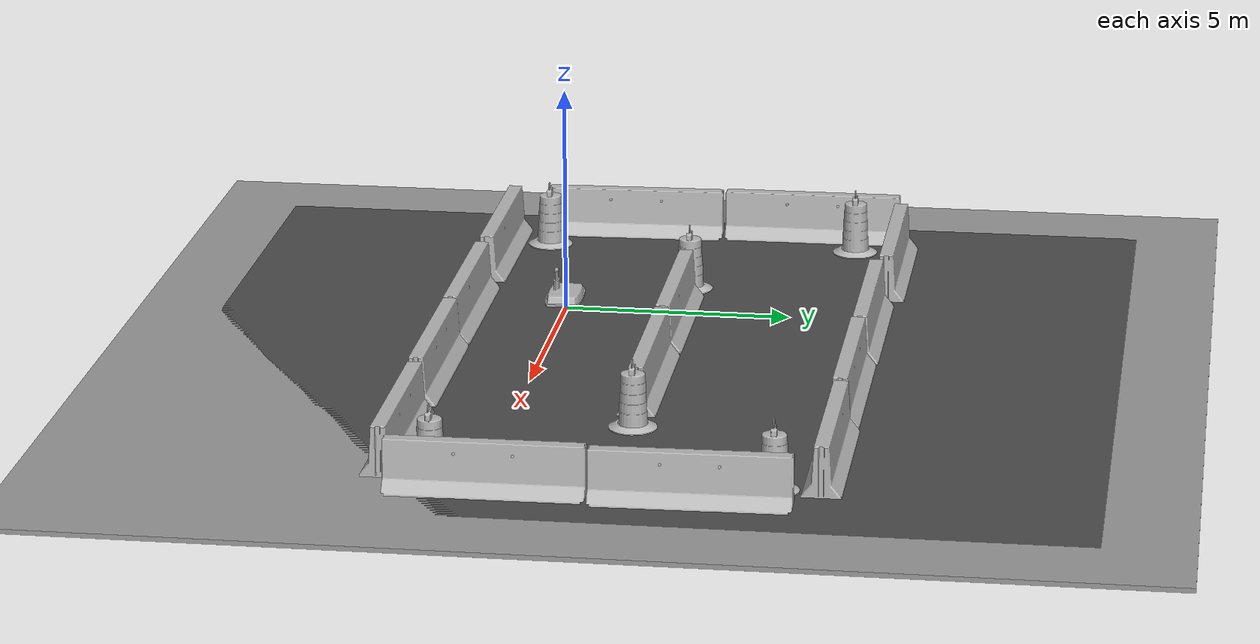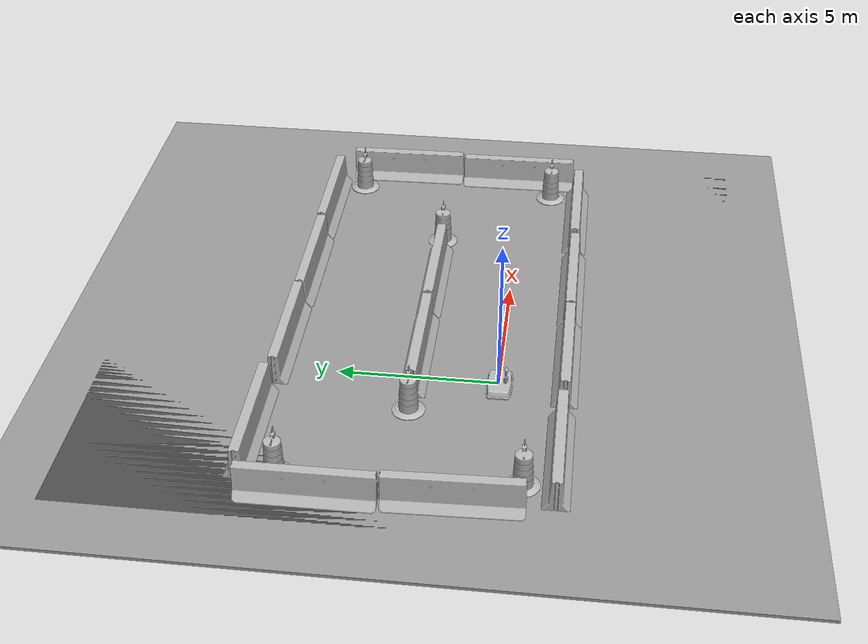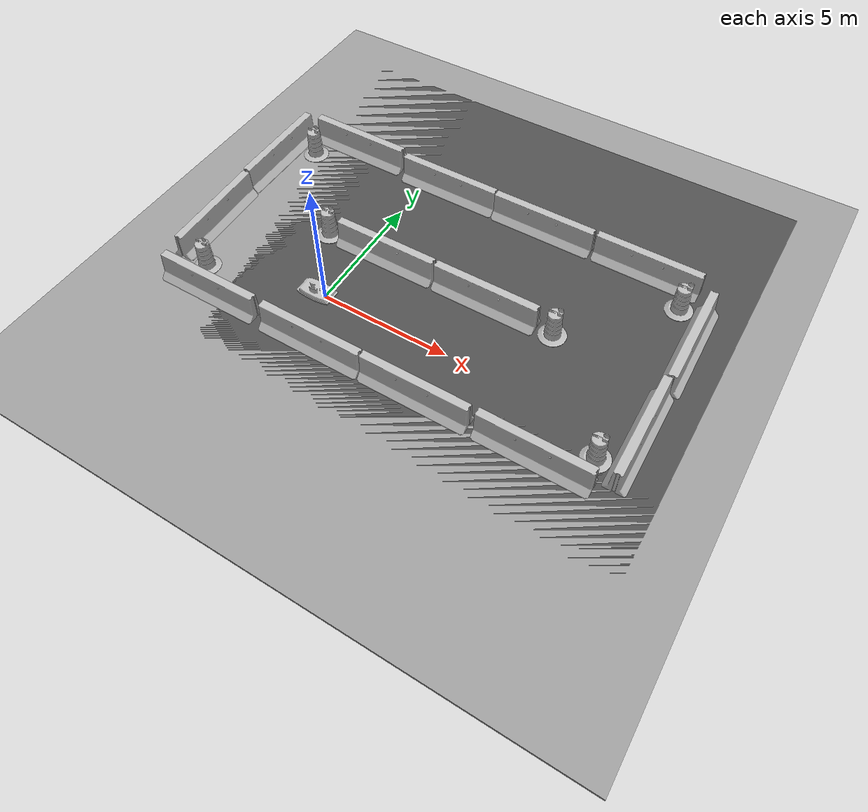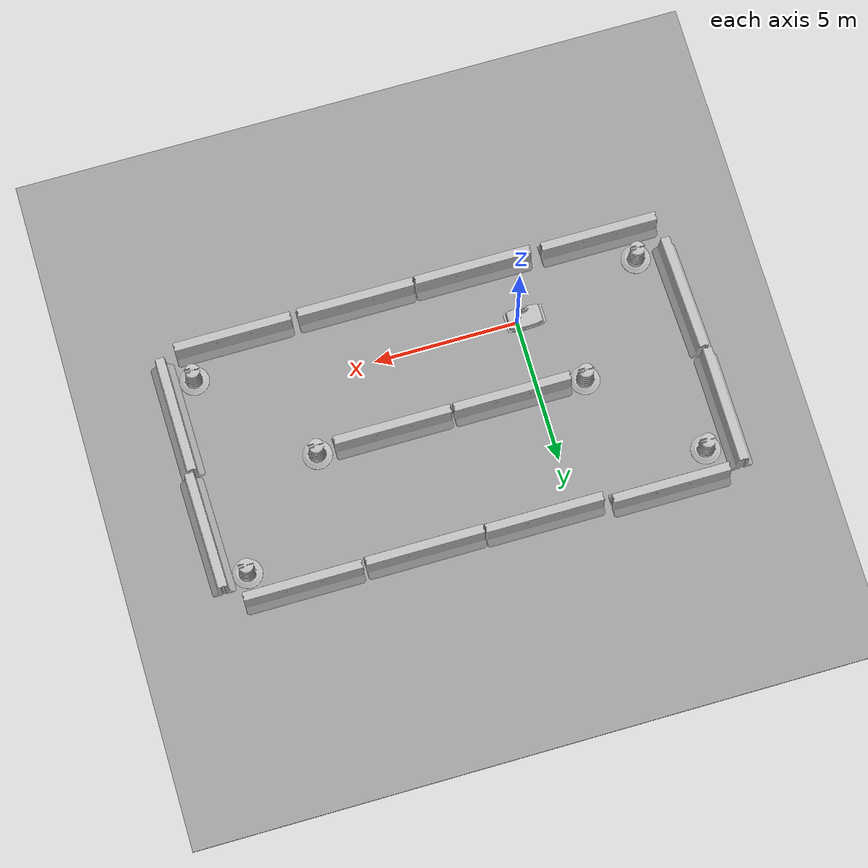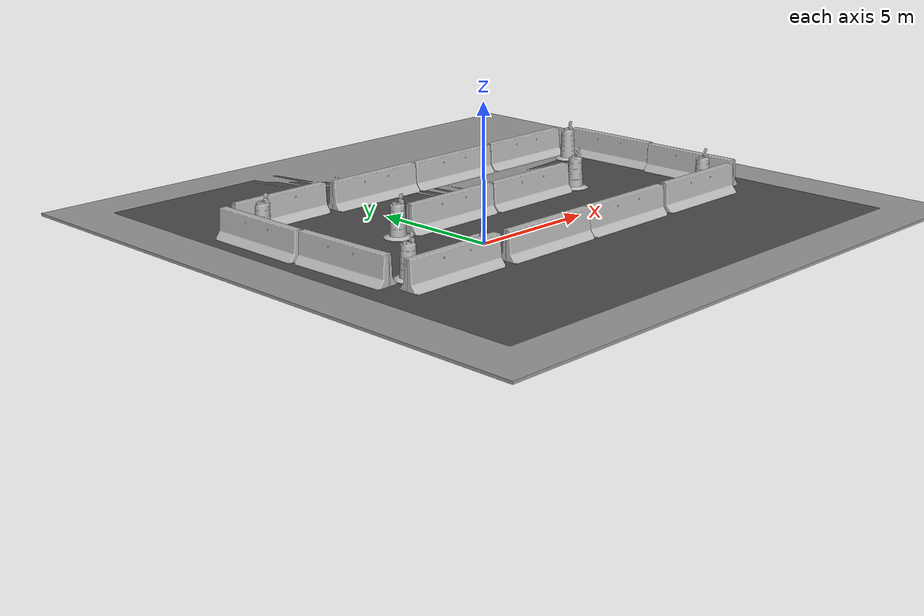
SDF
<sdf version="1.7">
 <world name="default">
  <light name="sun" type="directional">
   <pose>0 0 10 0 -0 0</pose>
   <diffuse>0.8 0.8 0.8 1</diffuse>
   <specular>0.2 0.2 0.2 1</specular>
   <attenuation>
    <range>1000</range>
    <constant>0.9</constant>
    <linear>0.01</linear>
    <quadratic>0.001</quadratic>
   </attenuation>
   <direction>-0.5 0.1 -0.9</direction>
   <spot><inner_angle>0</inner_angle><outer_angle>0</outer_angle><falloff>0</falloff></spot>
  </light>
  <model name="ground_plane">
   <static>1</static>
   <link name="link">
    <collision name="collision">
     <geometry><plane><normal>0 0 1</normal><size>100 100</size></plane></geometry>
     <surface>
      <contact><collide_bitmask>65535</collide_bitmask></contact>
      <friction><ode><mu>100</mu><mu2>50</mu2></ode></friction>
     </surface>
    </collision>
    <visual name="visual">
     <cast_shadows>0</cast_shadows>
     <geometry><plane><normal>0 0 1</normal><size>100 100</size></plane></geometry>
     <material>
      <script><uri>file://media/materials/scripts/gazebo.material</uri><name>Gazebo/Grey</name></script>
     </material>
    </visual>
   </link>
  </model>
  <gravity>0 0 -9.8</gravity>
  <magnetic_field>6e-06 2.3e-05 -4.2e-05</magnetic_field>
  <atmosphere type="adiabatic"/>
  <physics type="ode">
   <max_step_size>0.001</max_step_size>
   <real_time_factor>1</real_time_factor>
   <real_time_update_rate>1000</real_time_update_rate>
  </physics>
  <scene><ambient>0.4 0.4 0.4 1</ambient><background>0.7 0.7 0.7 1</background><shadows>1</shadows></scene>
  <spherical_coordinates>
   <surface_model>EARTH_WGS84</surface_model>
   <latitude_deg>0</latitude_deg>
   <longitude_deg>0</longitude_deg>
   <elevation>0</elevation>
   <heading_deg>0</heading_deg>
  </spherical_coordinates>
  <model name="ground_plane_0">
   <static>1</static>
   <link name="link">
    <collision name="collision">
     <geometry><plane><normal>0 0 1</normal><size>100 100</size></plane></geometry>
     <surface>
      <contact><collide_bitmask>65535</collide_bitmask></contact>
      <friction><ode><mu>100</mu><mu2>50</mu2></ode></friction>
     </surface>
    </collision>
    <visual name="visual">
     <cast_shadows>0</cast_shadows>
     <geometry><plane><normal>0 0 1</normal><size>100 100</size></plane></geometry>
     <material>
      <script><uri>file://media/materials/scripts/gazebo.material</uri><name>Gazebo/Grey</name></script>
     </material>
    </visual>
   </link>
   <pose>-0.004412 0.222212 0 0 -0 0</pose>
  </model>
  <model name="jersey_barrier">
   <static>1</static>
   <link name="link">
    <visual name="visual">
     <geometry><mesh><uri>model://jersey_barrier/meshes/jersey_barrier.dae</uri></mesh></geometry>
    </visual>
    <collision name="upright">
     <pose>0 0 0.5715 0 -0 0</pose>
     <geometry><box><size>4.06542 0.3063 1.143</size></box></geometry>
    </collision>
    <collision name="base">
     <pose>0 0 0.032258 0 -0 0</pose>
     <geometry><box><size>4.06542 0.8107 0.064516</size></box></geometry>
    </collision>
    <collision name="base2">
     <pose>0 0 0.1 0 -0 0</pose>
     <geometry><box><size>4.06542 0.65 0.1</size></box></geometry>
    </collision>
    <collision name="base3">
     <pose>0 0 0.2 0 -0 0</pose>
     <geometry><box><size>4.06542 0.5 0.1</size></box></geometry>
    </collision>
    <collision name="left-angle">
     <pose>0 -0.224 0.2401 0.9 -0 0</pose>
     <geometry><box><size>4.06542 0.5 0.064516</size></box></geometry>
    </collision>
    <collision name="right-angle">
     <pose>0 0.224 0.2401 -0.9 0 0</pose>
     <geometry><box><size>4.06542 0.5 0.064516</size></box></geometry>
    </collision>
   </link>
   <pose>0.969502 -2.07008 0 0 -0 0</pose>
  </model>
  <model name="jersey_barrier_0">
   <static>1</static>
   <link name="link">
    <visual name="visual">
     <geometry><mesh><uri>model://jersey_barrier/meshes/jersey_barrier.dae</uri></mesh></geometry>
    </visual>
    <collision name="upright">
     <pose>0 0 0.5715 0 -0 0</pose>
     <geometry><box><size>4.06542 0.3063 1.143</size></box></geometry>
    </collision>
    <collision name="base">
     <pose>0 0 0.032258 0 -0 0</pose>
     <geometry><box><size>4.06542 0.8107 0.064516</size></box></geometry>
    </collision>
    <collision name="base2">
     <pose>0 0 0.1 0 -0 0</pose>
     <geometry><box><size>4.06542 0.65 0.1</size></box></geometry>
    </collision>
    <collision name="base3">
     <pose>0 0 0.2 0 -0 0</pose>
     <geometry><box><size>4.06542 0.5 0.1</size></box></geometry>
    </collision>
    <collision name="left-angle">
     <pose>0 -0.224 0.2401 0.9 -0 0</pose>
     <geometry><box><size>4.06542 0.5 0.064516</size></box></geometry>
    </collision>
    <collision name="right-angle">
     <pose>0 0.224 0.2401 -0.9 0 0</pose>
     <geometry><box><size>4.06542 0.5 0.064516</size></box></geometry>
    </collision>
   </link>
   <pose>0.942026 2.56626 0 0 -0 0</pose>
  </model>
  <model name="jersey_barrier_1">
   <static>1</static>
   <link name="link">
    <visual name="visual">
     <geometry><mesh><uri>model://jersey_barrier/meshes/jersey_barrier.dae</uri></mesh></geometry>
    </visual>
    <collision name="upright">
     <pose>0 0 0.5715 0 -0 0</pose>
     <geometry><box><size>4.06542 0.3063 1.143</size></box></geometry>
    </collision>
    <collision name="base">
     <pose>0 0 0.032258 0 -0 0</pose>
     <geometry><box><size>4.06542 0.8107 0.064516</size></box></geometry>
    </collision>
    <collision name="base2">
     <pose>0 0 0.1 0 -0 0</pose>
     <geometry><box><size>4.06542 0.65 0.1</size></box></geometry>
    </collision>
    <collision name="base3">
     <pose>0 0 0.2 0 -0 0</pose>
     <geometry><box><size>4.06542 0.5 0.1</size></box></geometry>
    </collision>
    <collision name="left-angle">
     <pose>0 -0.224 0.2401 0.9 -0 0</pose>
     <geometry><box><size>4.06542 0.5 0.064516</size></box></geometry>
    </collision>
    <collision name="right-angle">
     <pose>0 0.224 0.2401 -0.9 0 0</pose>
     <geometry><box><size>4.06542 0.5 0.064516</size></box></geometry>
    </collision>
   </link>
   <pose>5.07809 -2.06142 0 0 -0 0</pose>
  </model>
  <model name="jersey_barrier_2">
   <static>1</static>
   <link name="link">
    <visual name="visual">
     <geometry><mesh><uri>model://jersey_barrier/meshes/jersey_barrier.dae</uri></mesh></geometry>
    </visual>
    <collision name="upright">
     <pose>0 0 0.5715 0 -0 0</pose>
     <geometry><box><size>4.06542 0.3063 1.143</size></box></geometry>
    </collision>
    <collision name="base">
     <pose>0 0 0.032258 0 -0 0</pose>
     <geometry><box><size>4.06542 0.8107 0.064516</size></box></geometry>
    </collision>
    <collision name="base2">
     <pose>0 0 0.1 0 -0 0</pose>
     <geometry><box><size>4.06542 0.65 0.1</size></box></geometry>
    </collision>
    <collision name="base3">
     <pose>0 0 0.2 0 -0 0</pose>
     <geometry><box><size>4.06542 0.5 0.1</size></box></geometry>
    </collision>
    <collision name="left-angle">
     <pose>0 -0.224 0.2401 0.9 -0 0</pose>
     <geometry><box><size>4.06542 0.5 0.064516</size></box></geometry>
    </collision>
    <collision name="right-angle">
     <pose>0 0.224 0.2401 -0.9 0 0</pose>
     <geometry><box><size>4.06542 0.5 0.064516</size></box></geometry>
    </collision>
   </link>
   <pose>5.09172 2.5614 0 0 -0 0</pose>
  </model>
  <model name="jersey_barrier_3">
   <static>1</static>
   <link name="link">
    <visual name="visual">
     <geometry><mesh><uri>model://jersey_barrier/meshes/jersey_barrier.dae</uri></mesh></geometry>
    </visual>
    <collision name="upright">
     <pose>0 0 0.5715 0 -0 0</pose>
     <geometry><box><size>4.06542 0.3063 1.143</size></box></geometry>
    </collision>
    <collision name="base">
     <pose>0 0 0.032258 0 -0 0</pose>
     <geometry><box><size>4.06542 0.8107 0.064516</size></box></geometry>
    </collision>
    <collision name="base2">
     <pose>0 0 0.1 0 -0 0</pose>
     <geometry><box><size>4.06542 0.65 0.1</size></box></geometry>
    </collision>
    <collision name="base3">
     <pose>0 0 0.2 0 -0 0</pose>
     <geometry><box><size>4.06542 0.5 0.1</size></box></geometry>
    </collision>
    <collision name="left-angle">
     <pose>0 -0.224 0.2401 0.9 -0 0</pose>
     <geometry><box><size>4.06542 0.5 0.064516</size></box></geometry>
    </collision>
    <collision name="right-angle">
     <pose>0 0.224 0.2401 -0.9 0 0</pose>
     <geometry><box><size>4.06542 0.5 0.064516</size></box></geometry>
    </collision>
   </link>
   <pose>9.36694 -2.03515 0 0 -0 0</pose>
  </model>
  <model name="jersey_barrier_4">
   <static>1</static>
   <link name="link">
    <visual name="visual">
     <geometry><mesh><uri>model://jersey_barrier/meshes/jersey_barrier.dae</uri></mesh></geometry>
    </visual>
    <collision name="upright">
     <pose>0 0 0.5715 0 -0 0</pose>
     <geometry><box><size>4.06542 0.3063 1.143</size></box></geometry>
    </collision>
    <collision name="base">
     <pose>0 0 0.032258 0 -0 0</pose>
     <geometry><box><size>4.06542 0.8107 0.064516</size></box></geometry>
    </collision>
    <collision name="base2">
     <pose>0 0 0.1 0 -0 0</pose>
     <geometry><box><size>4.06542 0.65 0.1</size></box></geometry>
    </collision>
    <collision name="base3">
     <pose>0 0 0.2 0 -0 0</pose>
     <geometry><box><size>4.06542 0.5 0.1</size></box></geometry>
    </collision>
    <collision name="left-angle">
     <pose>0 -0.224 0.2401 0.9 -0 0</pose>
     <geometry><box><size>4.06542 0.5 0.064516</size></box></geometry>
    </collision>
    <collision name="right-angle">
     <pose>0 0.224 0.2401 -0.9 0 0</pose>
     <geometry><box><size>4.06542 0.5 0.064516</size></box></geometry>
    </collision>
   </link>
   <pose>11.9241 0.21403 0 0 0 -1.55856</pose>
  </model>
  <model name="jersey_barrier_5">
   <static>1</static>
   <link name="link">
    <visual name="visual">
     <geometry><mesh><uri>model://jersey_barrier/meshes/jersey_barrier.dae</uri></mesh></geometry>
    </visual>
    <collision name="upright">
     <pose>0 0 0.5715 0 -0 0</pose>
     <geometry><box><size>4.06542 0.3063 1.143</size></box></geometry>
    </collision>
    <collision name="base">
     <pose>0 0 0.032258 0 -0 0</pose>
     <geometry><box><size>4.06542 0.8107 0.064516</size></box></geometry>
    </collision>
    <collision name="base2">
     <pose>0 0 0.1 0 -0 0</pose>
     <geometry><box><size>4.06542 0.65 0.1</size></box></geometry>
    </collision>
    <collision name="base3">
     <pose>0 0 0.2 0 -0 0</pose>
     <geometry><box><size>4.06542 0.5 0.1</size></box></geometry>
    </collision>
    <collision name="left-angle">
     <pose>0 -0.224 0.2401 0.9 -0 0</pose>
     <geometry><box><size>4.06542 0.5 0.064516</size></box></geometry>
    </collision>
    <collision name="right-angle">
     <pose>0 0.224 0.2401 -0.9 0 0</pose>
     <geometry><box><size>4.06542 0.5 0.064516</size></box></geometry>
    </collision>
   </link>
   <pose>5.18998 6.81502 0 0 -0 0</pose>
  </model>
  <model name="jersey_barrier_6">
   <static>1</static>
   <link name="link">
    <visual name="visual">
     <geometry><mesh><uri>model://jersey_barrier/meshes/jersey_barrier.dae</uri></mesh></geometry>
    </visual>
    <collision name="upright">
     <pose>0 0 0.5715 0 -0 0</pose>
     <geometry><box><size>4.06542 0.3063 1.143</size></box></geometry>
    </collision>
    <collision name="base">
     <pose>0 0 0.032258 0 -0 0</pose>
     <geometry><box><size>4.06542 0.8107 0.064516</size></box></geometry>
    </collision>
    <collision name="base2">
     <pose>0 0 0.1 0 -0 0</pose>
     <geometry><box><size>4.06542 0.65 0.1</size></box></geometry>
    </collision>
    <collision name="base3">
     <pose>0 0 0.2 0 -0 0</pose>
     <geometry><box><size>4.06542 0.5 0.1</size></box></geometry>
    </collision>
    <collision name="left-angle">
     <pose>0 -0.224 0.2401 0.9 -0 0</pose>
     <geometry><box><size>4.06542 0.5 0.064516</size></box></geometry>
    </collision>
    <collision name="right-angle">
     <pose>0 0.224 0.2401 -0.9 0 0</pose>
     <geometry><box><size>4.06542 0.5 0.064516</size></box></geometry>
    </collision>
   </link>
   <pose>9.36686 6.84913 0 0 -0 0</pose>
  </model>
  <model name="jersey_barrier_7">
   <static>1</static>
   <link name="link">
    <visual name="visual">
     <geometry><mesh><uri>model://jersey_barrier/meshes/jersey_barrier.dae</uri></mesh></geometry>
    </visual>
    <collision name="upright">
     <pose>0 0 0.5715 0 -0 0</pose>
     <geometry><box><size>4.06542 0.3063 1.143</size></box></geometry>
    </collision>
    <collision name="base">
     <pose>0 0 0.032258 0 -0 0</pose>
     <geometry><box><size>4.06542 0.8107 0.064516</size></box></geometry>
    </collision>
    <collision name="base2">
     <pose>0 0 0.1 0 -0 0</pose>
     <geometry><box><size>4.06542 0.65 0.1</size></box></geometry>
    </collision>
    <collision name="base3">
     <pose>0 0 0.2 0 -0 0</pose>
     <geometry><box><size>4.06542 0.5 0.1</size></box></geometry>
    </collision>
    <collision name="left-angle">
     <pose>0 -0.224 0.2401 0.9 -0 0</pose>
     <geometry><box><size>4.06542 0.5 0.064516</size></box></geometry>
    </collision>
    <collision name="right-angle">
     <pose>0 0.224 0.2401 -0.9 0 0</pose>
     <geometry><box><size>4.06542 0.5 0.064516</size></box></geometry>
    </collision>
   </link>
   <pose>11.979 4.32875 0 0 0 -1.55065</pose>
  </model>
  <model name="jersey_barrier_8">
   <static>1</static>
   <link name="link">
    <visual name="visual">
     <geometry><mesh><uri>model://jersey_barrier/meshes/jersey_barrier.dae</uri></mesh></geometry>
    </visual>
    <collision name="upright">
     <pose>0 0 0.5715 0 -0 0</pose>
     <geometry><box><size>4.06542 0.3063 1.143</size></box></geometry>
    </collision>
    <collision name="base">
     <pose>0 0 0.032258 0 -0 0</pose>
     <geometry><box><size>4.06542 0.8107 0.064516</size></box></geometry>
    </collision>
    <collision name="base2">
     <pose>0 0 0.1 0 -0 0</pose>
     <geometry><box><size>4.06542 0.65 0.1</size></box></geometry>
    </collision>
    <collision name="base3">
     <pose>0 0 0.2 0 -0 0</pose>
     <geometry><box><size>4.06542 0.5 0.1</size></box></geometry>
    </collision>
    <collision name="left-angle">
     <pose>0 -0.224 0.2401 0.9 -0 0</pose>
     <geometry><box><size>4.06542 0.5 0.064516</size></box></geometry>
    </collision>
    <collision name="right-angle">
     <pose>0 0.224 0.2401 -0.9 0 0</pose>
     <geometry><box><size>4.06542 0.5 0.064516</size></box></geometry>
    </collision>
   </link>
   <pose>-3.46646 -2.02999 0 0 -0 0</pose>
  </model>
  <model name="jersey_barrier_9">
   <static>1</static>
   <link name="link">
    <visual name="visual">
     <geometry><mesh><uri>model://jersey_barrier/meshes/jersey_barrier.dae</uri></mesh></geometry>
    </visual>
    <collision name="upright">
     <pose>0 0 0.5715 0 -0 0</pose>
     <geometry><box><size>4.06542 0.3063 1.143</size></box></geometry>
    </collision>
    <collision name="base">
     <pose>0 0 0.032258 0 -0 0</pose>
     <geometry><box><size>4.06542 0.8107 0.064516</size></box></geometry>
    </collision>
    <collision name="base2">
     <pose>0 0 0.1 0 -0 0</pose>
     <geometry><box><size>4.06542 0.65 0.1</size></box></geometry>
    </collision>
    <collision name="base3">
     <pose>0 0 0.2 0 -0 0</pose>
     <geometry><box><size>4.06542 0.5 0.1</size></box></geometry>
    </collision>
    <collision name="left-angle">
     <pose>0 -0.224 0.2401 0.9 -0 0</pose>
     <geometry><box><size>4.06542 0.5 0.064516</size></box></geometry>
    </collision>
    <collision name="right-angle">
     <pose>0 0.224 0.2401 -0.9 0 0</pose>
     <geometry><box><size>4.06542 0.5 0.064516</size></box></geometry>
    </collision>
   </link>
   <pose>1.09533 6.84606 0 0 -0 0</pose>
  </model>
  <model name="jersey_barrier_10">
   <static>1</static>
   <link name="link">
    <visual name="visual">
     <geometry><mesh><uri>model://jersey_barrier/meshes/jersey_barrier.dae</uri></mesh></geometry>
    </visual>
    <collision name="upright">
     <pose>0 0 0.5715 0 -0 0</pose>
     <geometry><box><size>4.06542 0.3063 1.143</size></box></geometry>
    </collision>
    <collision name="base">
     <pose>0 0 0.032258 0 -0 0</pose>
     <geometry><box><size>4.06542 0.8107 0.064516</size></box></geometry>
    </collision>
    <collision name="base2">
     <pose>0 0 0.1 0 -0 0</pose>
     <geometry><box><size>4.06542 0.65 0.1</size></box></geometry>
    </collision>
    <collision name="base3">
     <pose>0 0 0.2 0 -0 0</pose>
     <geometry><box><size>4.06542 0.5 0.1</size></box></geometry>
    </collision>
    <collision name="left-angle">
     <pose>0 -0.224 0.2401 0.9 -0 0</pose>
     <geometry><box><size>4.06542 0.5 0.064516</size></box></geometry>
    </collision>
    <collision name="right-angle">
     <pose>0 0.224 0.2401 -0.9 0 0</pose>
     <geometry><box><size>4.06542 0.5 0.064516</size></box></geometry>
    </collision>
   </link>
   <pose>-3.23221 7.03978 0 0 -0 0</pose>
  </model>
  <model name="jersey_barrier_11">
   <static>1</static>
   <link name="link">
    <visual name="visual">
     <geometry><mesh><uri>model://jersey_barrier/meshes/jersey_barrier.dae</uri></mesh></geometry>
    </visual>
    <collision name="upright">
     <pose>0 0 0.5715 0 -0 0</pose>
     <geometry><box><size>4.06542 0.3063 1.143</size></box></geometry>
    </collision>
    <collision name="base">
     <pose>0 0 0.032258 0 -0 0</pose>
     <geometry><box><size>4.06542 0.8107 0.064516</size></box></geometry>
    </collision>
    <collision name="base2">
     <pose>0 0 0.1 0 -0 0</pose>
     <geometry><box><size>4.06542 0.65 0.1</size></box></geometry>
    </collision>
    <collision name="base3">
     <pose>0 0 0.2 0 -0 0</pose>
     <geometry><box><size>4.06542 0.5 0.1</size></box></geometry>
    </collision>
    <collision name="left-angle">
     <pose>0 -0.224 0.2401 0.9 -0 0</pose>
     <geometry><box><size>4.06542 0.5 0.064516</size></box></geometry>
    </collision>
    <collision name="right-angle">
     <pose>0 0.224 0.2401 -0.9 0 0</pose>
     <geometry><box><size>4.06542 0.5 0.064516</size></box></geometry>
    </collision>
   </link>
   <pose>-5.76712 4.94321 0 0 -0 1.57795</pose>
  </model>
  <model name="jersey_barrier_12">
   <static>1</static>
   <link name="link">
    <visual name="visual">
     <geometry><mesh><uri>model://jersey_barrier/meshes/jersey_barrier.dae</uri></mesh></geometry>
    </visual>
    <collision name="upright">
     <pose>0 0 0.5715 0 -0 0</pose>
     <geometry><box><size>4.06542 0.3063 1.143</size></box></geometry>
    </collision>
    <collision name="base">
     <pose>0 0 0.032258 0 -0 0</pose>
     <geometry><box><size>4.06542 0.8107 0.064516</size></box></geometry>
    </collision>
    <collision name="base2">
     <pose>0 0 0.1 0 -0 0</pose>
     <geometry><box><size>4.06542 0.65 0.1</size></box></geometry>
    </collision>
    <collision name="base3">
     <pose>0 0 0.2 0 -0 0</pose>
     <geometry><box><size>4.06542 0.5 0.1</size></box></geometry>
    </collision>
    <collision name="left-angle">
     <pose>0 -0.224 0.2401 0.9 -0 0</pose>
     <geometry><box><size>4.06542 0.5 0.064516</size></box></geometry>
    </collision>
    <collision name="right-angle">
     <pose>0 0.224 0.2401 -0.9 0 0</pose>
     <geometry><box><size>4.06542 0.5 0.064516</size></box></geometry>
    </collision>
   </link>
   <pose>-5.61764 0.814114 0 0 -0 1.60345</pose>
  </model>
  <model name="Construction Barrel">
   <link name="link">
    <inertial>
     <pose>0 0 0.4 0 -0 0</pose>
     <mass>500</mass>
     <inertia><ixx>51.2096</ixx><iyy>51.2096</iyy><izz>25</izz><ixy>0</ixy><ixz>0</ixz><iyz>0</iyz></inertia>
    </inertial>
    <collision name="collision">
     <geometry><mesh><uri>model://construction_barrel/meshes/construction_barrel.dae</uri></mesh></geometry>
    </collision>
    <visual name="visual">
     <geometry><mesh><uri>model://construction_barrel/meshes/construction_barrel.dae</uri></mesh></geometry>
    </visual>
   </link>
   <pose>-4.53575 -1.05497 0.049999 -1e-06 -2e-06 0.025385</pose>
  </model>
  <model name="Construction Barrel_0">
   <link name="link">
    <inertial>
     <pose>0 0 0.4 0 -0 0</pose>
     <mass>500</mass>
     <inertia><ixx>51.2096</ixx><iyy>51.2096</iyy><izz>25</izz><ixy>0</ixy><ixz>0</ixz><iyz>0</iyz></inertia>
    </inertial>
    <collision name="collision">
     <geometry><mesh><uri>model://construction_barrel/meshes/construction_barrel.dae</uri></mesh></geometry>
    </collision>
    <visual name="visual">
     <geometry><mesh><uri>model://construction_barrel/meshes/construction_barrel.dae</uri></mesh></geometry>
    </visual>
   </link>
   <pose>-4.81279 6.02351 0.049999 -1e-06 -2e-06 0.025693</pose>
  </model>
  <model name="Construction Barrel_1">
   <link name="link">
    <inertial>
     <pose>0 0 0.4 0 -0 0</pose>
     <mass>500</mass>
     <inertia><ixx>51.2096</ixx><iyy>51.2096</iyy><izz>25</izz><ixy>0</ixy><ixz>0</ixz><iyz>0</iyz></inertia>
    </inertial>
    <collision name="collision">
     <geometry><mesh><uri>model://construction_barrel/meshes/construction_barrel.dae</uri></mesh></geometry>
    </collision>
    <visual name="visual">
     <geometry><mesh><uri>model://construction_barrel/meshes/construction_barrel.dae</uri></mesh></geometry>
    </visual>
   </link>
   <pose>-1.63176 2.58226 0.049999 -1e-06 -2e-06 0.023383</pose>
  </model>
  <model name="Construction Barrel_2">
   <link name="link">
    <inertial>
     <pose>0 0 0.4 0 -0 0</pose>
     <mass>500</mass>
     <inertia><ixx>51.2096</ixx><iyy>51.2096</iyy><izz>25</izz><ixy>0</ixy><ixz>0</ixz><iyz>0</iyz></inertia>
    </inertial>
    <collision name="collision">
     <geometry><mesh><uri>model://construction_barrel/meshes/construction_barrel.dae</uri></mesh></geometry>
    </collision>
    <visual name="visual">
     <geometry><mesh><uri>model://construction_barrel/meshes/construction_barrel.dae</uri></mesh></geometry>
    </visual>
   </link>
   <pose>11.0251 -1.04455 0.057259 -0.000122 -0.014256 0.024786</pose>
  </model>
  <model name="Construction Barrel_3">
   <link name="link">
    <inertial>
     <pose>0 0 0.4 0 -0 0</pose>
     <mass>500</mass>
     <inertia><ixx>51.2096</ixx><iyy>51.2096</iyy><izz>25</izz><ixy>0</ixy><ixz>0</ixz><iyz>0</iyz></inertia>
    </inertial>
    <collision name="collision">
     <geometry><mesh><uri>model://construction_barrel/meshes/construction_barrel.dae</uri></mesh></geometry>
    </collision>
    <visual name="visual">
     <geometry><mesh><uri>model://construction_barrel/meshes/construction_barrel.dae</uri></mesh></geometry>
    </visual>
   </link>
   <pose>11.0331 5.88413 0.057264 -1.5e-05 -0.014246 0.024567</pose>
  </model>
  <model name="Construction Barrel_4">
   <link name="link">
    <inertial>
     <pose>0 0 0.4 0 -0 0</pose>
     <mass>500</mass>
     <inertia><ixx>51.2096</ixx><iyy>51.2096</iyy><izz>25</izz><ixy>0</ixy><ixz>0</ixz><iyz>0</iyz></inertia>
    </inertial>
    <collision name="collision">
     <geometry><mesh><uri>model://construction_barrel/meshes/construction_barrel.dae</uri></mesh></geometry>
    </collision>
    <visual name="visual">
     <geometry><mesh><uri>model://construction_barrel/meshes/construction_barrel.dae</uri></mesh></geometry>
    </visual>
   </link>
   <pose>7.72547 2.59327 0.049999 -1e-06 -2e-06 0.025253</pose>
  </model>
  <model name="asphalt_plane">
   <static>1</static>
   <link name="link">
    <collision name="collision"><geometry><box><size>20 20 0.1</size></box></geometry></collision>
    <visual name="visual">
     <cast_shadows>0</cast_shadows>
     <geometry><box><size>20 20 0.1</size></box></geometry>
     <material>
      <script>
       <uri>model://asphalt_plane/materials/scripts</uri>
       <uri>model://asphalt_plane/materials/textures</uri>
       <name>vrc/asphalt</name>
      </script>
     </material>
    </visual>
   </link>
   <pose>3.2923 2.43677 0 0 -0 0</pose>
  </model>
  <model name="mobile_robot">
   <static>0</static>
   <link name="chassis">
    <pose>0 0 0.04 0 -0 0</pose>
    <collision name="collision"><geometry><box><size>2 0.7 0.1</size></box></geometry></collision>
    <visual name="visual">
     <pose>0 0 0.02 0 -0 0</pose>
     <geometry><mesh><uri>model://warehouse_robot/meshes/robot.dae</uri><scale>2 0.7 0.5</scale></mesh></geometry>
    </visual>
    <collision name="caster_collision">
     <pose>-0.4 0 0 0 -0 0</pose>
     <geometry><sphere><radius>0.06</radius></sphere></geometry>
     <surface><friction><ode><mu>0</mu><mu2>0</mu2><slip1>1</slip1><slip2>1</slip2></ode></friction></surface>
    </collision>
    <visual name="caster_visual">
     <pose>-0.4 0 0 0 -0 0</pose>
     <geometry><sphere><radius>0.06</radius></sphere></geometry>
    </visual>
    <inertial>
     <inertia><ixx>1</ixx><ixy>0</ixy><ixz>0</ixz><iyy>1</iyy><iyz>0</iyz><izz>1</izz></inertia>
     <mass>1</mass>
    </inertial>
   </link>
   <link name="left_wheel">
    <pose>0.4 0.2 0.1 -0 1.5707 1.5707</pose>
    <collision name="collision">
     <geometry><cylinder><radius>0.12</radius><length>0.08</length></cylinder></geometry>
    </collision>
    <visual name="visual">
     <geometry><cylinder><radius>0.12</radius><length>0.08</length></cylinder></geometry>
    </visual>
    <inertial>
     <inertia><ixx>1</ixx><ixy>0</ixy><ixz>0</ixz><iyy>1</iyy><iyz>0</iyz><izz>1</izz></inertia>
     <mass>1</mass>
    </inertial>
   </link>
   <link name="right_wheel">
    <pose>0.4 -0.2 0.1 -0 1.5707 1.5707</pose>
    <collision name="collision">
     <geometry><cylinder><radius>0.12</radius><length>0.08</length></cylinder></geometry>
    </collision>
    <visual name="visual">
     <geometry><cylinder><radius>0.12</radius><length>0.08</length></cylinder></geometry>
    </visual>
    <inertial>
     <inertia><ixx>1</ixx><ixy>0</ixy><ixz>0</ixz><iyy>1</iyy><iyz>0</iyz><izz>1</izz></inertia>
     <mass>1</mass>
    </inertial>
   </link>
   <link name="laser_link">
    <inertial>
     <mass>0.1</mass>
     <inertia><ixx>1</ixx><ixy>0</ixy><ixz>0</ixz><iyy>1</iyy><iyz>0</iyz><izz>1</izz></inertia>
    </inertial>
    <pose>0.15 0 0.3 0 -0 0</pose>
    <visual name="visual"><geometry><mesh><uri>model://hokuyo/meshes/hokuyo.dae</uri></mesh></geometry></visual>
    <collision name="collision-base">
     <pose>0 0 -0.0145 0 -0 0</pose>
     <geometry><box><size>0.05 0.05 0.041</size></box></geometry>
    </collision>
    <collision name="collision-top">
     <pose>0 0 0.0205 0 -0 0</pose>
     <geometry><cylinder><radius>0.021</radius><length>0.029</length></cylinder></geometry>
    </collision>
    <sensor name="laser" type="ray">
     <pose>0.01 0 0.0175 0 -0 0</pose>
     <ray>
      <scan>
       <horizontal>
        <samples>181</samples>
        <resolution>1</resolution>
        <min_angle>-1.5708</min_angle>
        <max_angle>1.5708</max_angle>
       </horizontal>
       <vertical><samples>1</samples><min_angle>0</min_angle><max_angle>0</max_angle></vertical>
      </scan>
      <range><min>0.08</min><max>10</max><resolution>0.05</resolution></range>
     </ray>
     <always_on>1</always_on>
     <update_rate>10</update_rate>
     <visualize>1</visualize>
     <plugin name="laser" filename="libgazebo_ros_ray_sensor.so">
      <ros><namespace>/demo</namespace><argument>--ros-args --remap ~/out:=scan</argument></ros>
      <output_type>sensor_msgs/LaserScan</output_type>
     </plugin>
    </sensor>
   </link>
   <joint name="left_wheel_hinge" type="revolute">
    <pose>0 0 -0.03 0 -0 0</pose>
    <child>left_wheel</child>
    <parent>chassis</parent>
    <axis>
     <xyz expressed_in="__model__">0 1 0</xyz>
     <limit><lower>-1e+16</lower><upper>1e+16</upper></limit>
     <dynamics><spring_reference>0</spring_reference><spring_stiffness>0</spring_stiffness></dynamics>
    </axis>
   </joint>
   <joint name="right_wheel_hinge" type="revolute">
    <pose>0 0 0.03 0 -0 0</pose>
    <child>right_wheel</child>
    <parent>chassis</parent>
    <axis>
     <xyz expressed_in="__model__">0 1 0</xyz>
     <limit><lower>-1e+16</lower><upper>1e+16</upper></limit>
     <dynamics><spring_reference>0</spring_reference><spring_stiffness>0</spring_stiffness></dynamics>
    </axis>
   </joint>
   <joint name="laser_joint" type="fixed"><child>laser_link</child><parent>chassis</parent></joint>
   <plugin name="diff_drive" filename="libgazebo_ros_diff_drive.so">
    <ros>
     <namespace>/demo</namespace>
     <remapping>cmd_vel:=cmd_vel</remapping>
     <remapping>odom:=odom</remapping>
    </ros>
    <left_joint>left_wheel_hinge</left_joint>
    <right_joint>right_wheel_hinge</right_joint>
    <wheel_separation>0.26</wheel_separation>
    <wheel_diameter>0.2</wheel_diameter>
    <max_wheel_torque>20</max_wheel_torque>
    <max_wheel_acceleration>1.0</max_wheel_acceleration>
    <publish_odom>1</publish_odom>
    <publish_odom_tf>1</publish_odom_tf>
    <publish_wheel_tf>1</publish_wheel_tf>
    <odometry_frame>odom</odometry_frame>
    <robot_base_frame>chassis</robot_base_frame>
   </plugin>
   <pose>-0.285909 -0.057009 0.070002 -1e-06 -6e-06 0.000407</pose>
  </model>
 </world>
</sdf>
